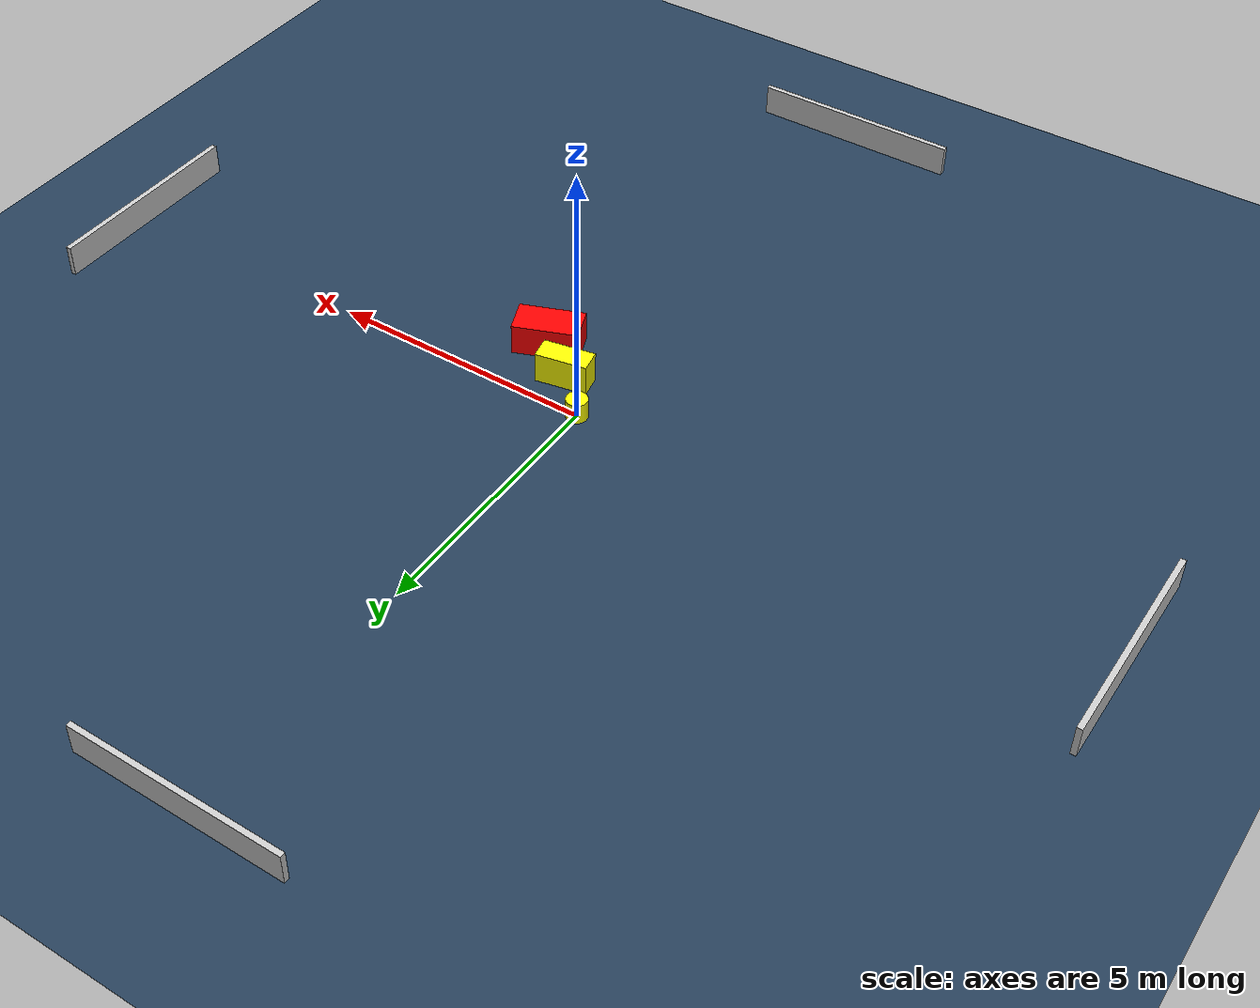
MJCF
<?xml version="1.0" ?>
<mujoco model="generated_environment">
  <option timestep="0.01" integrator="RK4" cone="elliptic"/>
  <default>
    <geom density="1"/>
  </default>
  <asset>
    <texture builtin="gradient" height="3072" name="skybox" rgb1="0.3 0.5 0.7" rgb2="0 0 0" type="skybox" width="512"/>
    <texture builtin="checker" height="300" name="groundplane" rgb1="0.2 0.3 0.4" rgb2="0.1 0.2 0.3" type="2d" width="300"/>
    <material name="groundplane" reflectance="0.2" texrepeat="5 5" texture="groundplane"/>
  </asset>
  <worldbody>
    <light dir="0 0 -1" directional="true" pos="0 0 1.5"/>
    <geom condim="3" friction="0.5 0.005 0.001" material="groundplane" name="floor" pos="0 0 0" size="0 0 0.05" type="plane"/>
    <body name="walls">
      <geom name="wall_1" condim="4" pos="-10.0 0.0 0.3" rgba="0.800000011920929 0.800000011920929 0.800000011920929 1.0" size="0.05 2.0 0.3" type="box"/>
      <geom name="wall_2" condim="4" pos="10.0 0.0 0.3" rgba="0.800000011920929 0.800000011920929 0.800000011920929 1.0" size="0.05 2.0 0.3" type="box"/>
      <geom name="wall_3" condim="4" pos="0.0 -10.0 0.3" rgba="0.800000011920929 0.800000011920929 0.800000011920929 1.0" size="2.0 0.05 0.3" type="box"/>
      <geom name="wall_4" condim="4" pos="0.0 10.0 0.3" rgba="0.800000011920929 0.800000011920929 0.800000011920929 1.0" size="2.0 0.05 0.3" type="box"/>
    </body>
    <body name="robot">
      <joint name="joint_x" type="slide" pos="0 0 0" axis="1 0 0"/>
      <joint name="joint_y" type="slide" pos="0 0 0" axis="0 1 0"/>
      <geom name="robot" type="cylinder" pos="0.0 0.0 0.2" size="0.2 0.2 0.0" mass="5.0" friction="1.0 0.005 0.0001" condim="4" rgba="1.0 1.0 0.0 1.0"/>
    </body>
    <body name="obstacle_1_movable">
      <geom name="obstacle_1_movable" condim="4" pos="0.6942015083562908 -0.6617524436514519 0.3" euler="0 0 281.023771317865" friction="0.0 0.005 0.001" rgba="1.0 1.0 0.0 1.0" size="0.21305338431318613 0.48232227053381377 0.3" type="box" mass="0.1"/>
      <joint type="free"/>
    </body>
    <body name="obstacle_2_static">
      <geom name="obstacle_2_static" condim="4" pos="1.4606939538013735 -1.269395676890889 0.3" euler="0 0 291.48106800940286" friction="0.0 0.005 0.001" rgba="1.0 0.0 0.0 1.0" size="0.32341624371168537 0.6096520099140231 0.3" type="box"/>
    </body>
  </worldbody>
  <actuator>
    <motor name="actuator_x" joint="joint_x" gear="1" ctrlrange="-1 1"/>
    <motor name="actuator_y" joint="joint_y" gear="1" ctrlrange="-1 1"/>
  </actuator>
</mujoco>
